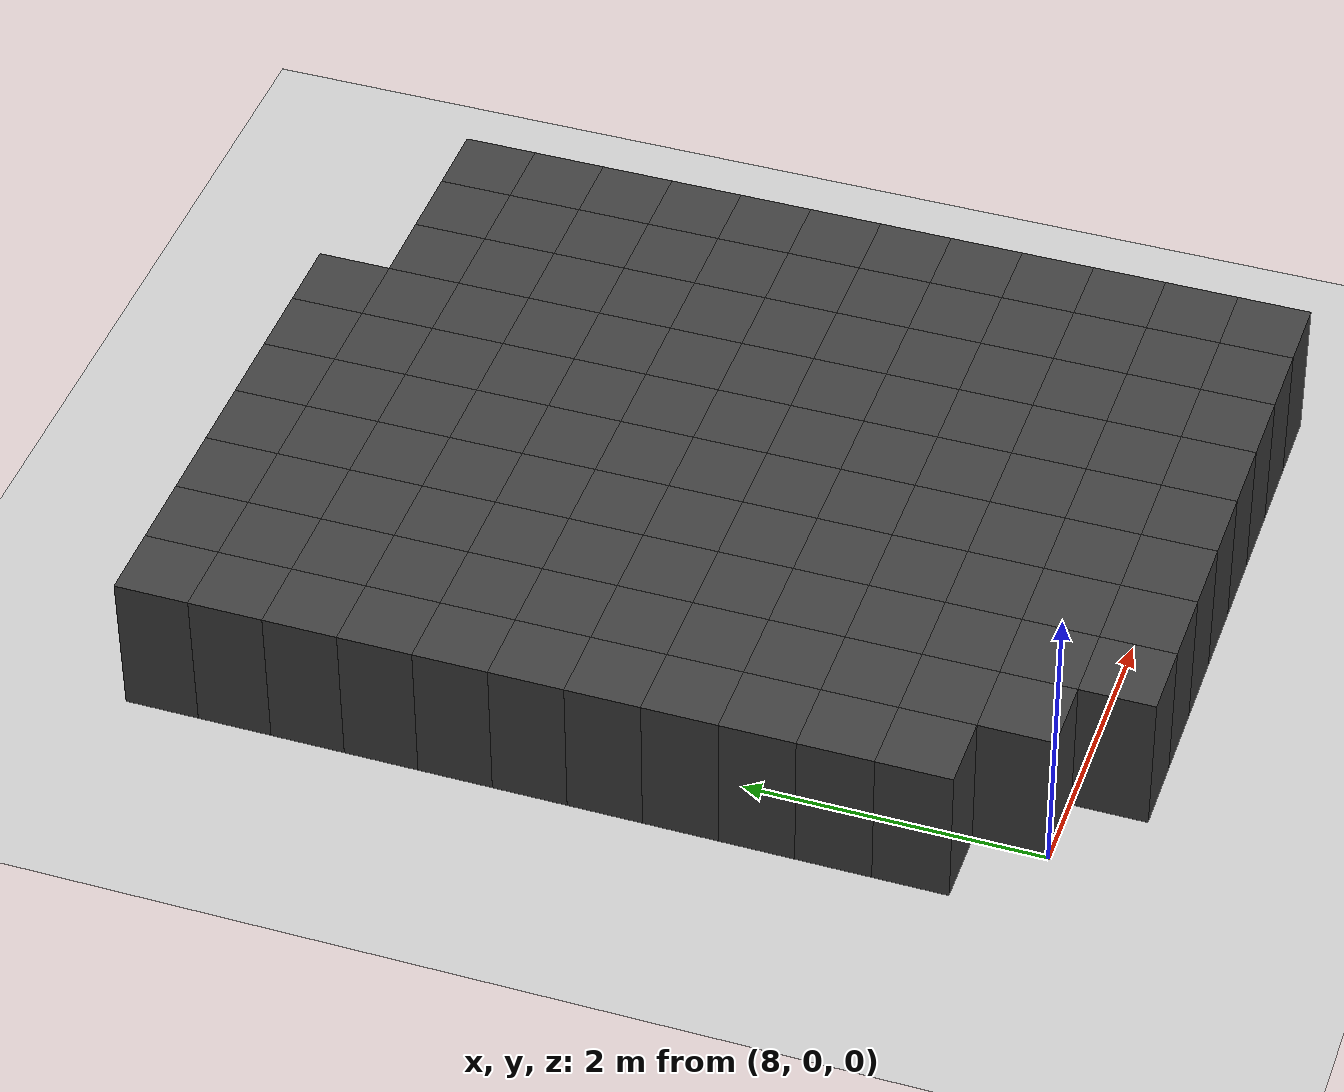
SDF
<sdf version="1.7">
 <world name="map_14668">
  <model name="ground_plane">
   <static>true</static>
   <link name="link">
    <collision name="collision">
     <geometry><plane><normal>0 0 1</normal><size>200 200</size></plane></geometry>
    </collision>
    <visual name="visual">
     <geometry><plane><normal>0 0 1</normal><size>200 200</size></plane></geometry>
     <material><ambient>0.8 0.8 0.8 1</ambient><diffuse>0.8 0.8 0.8 1</diffuse></material>
    </visual>
   </link>
  </model>
  <model name="maze_environment">
   <static>true</static>
   <link name="wall_494">
    <pose>7.750 5.750 0.500 0 0 0</pose>
    <collision name="col"><geometry><box><size>0.5 0.5 1.0</size></box></geometry></collision>
    <visual name="vis">
     <geometry><box><size>0.5 0.5 1.0</size></box></geometry>
     <material><ambient>0.15 0.15 0.15 1</ambient><diffuse>0.25 0.25 0.25 1</diffuse></material>
    </visual>
   </link>
   <link name="wall_495">
    <pose>8.250 5.750 0.500 0 0 0</pose>
    <collision name="col"><geometry><box><size>0.5 0.5 1.0</size></box></geometry></collision>
    <visual name="vis">
     <geometry><box><size>0.5 0.5 1.0</size></box></geometry>
     <material><ambient>0.15 0.15 0.15 1</ambient><diffuse>0.25 0.25 0.25 1</diffuse></material>
    </visual>
   </link>
   <link name="wall_496">
    <pose>8.750 5.750 0.500 0 0 0</pose>
    <collision name="col"><geometry><box><size>0.5 0.5 1.0</size></box></geometry></collision>
    <visual name="vis">
     <geometry><box><size>0.5 0.5 1.0</size></box></geometry>
     <material><ambient>0.15 0.15 0.15 1</ambient><diffuse>0.25 0.25 0.25 1</diffuse></material>
    </visual>
   </link>
   <link name="wall_497">
    <pose>9.250 5.750 0.500 0 0 0</pose>
    <collision name="col"><geometry><box><size>0.5 0.5 1.0</size></box></geometry></collision>
    <visual name="vis">
     <geometry><box><size>0.5 0.5 1.0</size></box></geometry>
     <material><ambient>0.15 0.15 0.15 1</ambient><diffuse>0.25 0.25 0.25 1</diffuse></material>
    </visual>
   </link>
   <link name="wall_498">
    <pose>9.750 5.750 0.500 0 0 0</pose>
    <collision name="col"><geometry><box><size>0.5 0.5 1.0</size></box></geometry></collision>
    <visual name="vis">
     <geometry><box><size>0.5 0.5 1.0</size></box></geometry>
     <material><ambient>0.15 0.15 0.15 1</ambient><diffuse>0.25 0.25 0.25 1</diffuse></material>
    </visual>
   </link>
   <link name="wall_499">
    <pose>10.250 5.750 0.500 0 0 0</pose>
    <collision name="col"><geometry><box><size>0.5 0.5 1.0</size></box></geometry></collision>
    <visual name="vis">
     <geometry><box><size>0.5 0.5 1.0</size></box></geometry>
     <material><ambient>0.15 0.15 0.15 1</ambient><diffuse>0.25 0.25 0.25 1</diffuse></material>
    </visual>
   </link>
   <link name="wall_500">
    <pose>10.750 5.750 0.500 0 0 0</pose>
    <collision name="col"><geometry><box><size>0.5 0.5 1.0</size></box></geometry></collision>
    <visual name="vis">
     <geometry><box><size>0.5 0.5 1.0</size></box></geometry>
     <material><ambient>0.15 0.15 0.15 1</ambient><diffuse>0.25 0.25 0.25 1</diffuse></material>
    </visual>
   </link>
   <link name="wall_524">
    <pose>7.750 5.250 0.500 0 0 0</pose>
    <collision name="col"><geometry><box><size>0.5 0.5 1.0</size></box></geometry></collision>
    <visual name="vis">
     <geometry><box><size>0.5 0.5 1.0</size></box></geometry>
     <material><ambient>0.15 0.15 0.15 1</ambient><diffuse>0.25 0.25 0.25 1</diffuse></material>
    </visual>
   </link>
   <link name="wall_525">
    <pose>8.250 5.250 0.500 0 0 0</pose>
    <collision name="col"><geometry><box><size>0.5 0.5 1.0</size></box></geometry></collision>
    <visual name="vis">
     <geometry><box><size>0.5 0.5 1.0</size></box></geometry>
     <material><ambient>0.15 0.15 0.15 1</ambient><diffuse>0.25 0.25 0.25 1</diffuse></material>
    </visual>
   </link>
   <link name="wall_526">
    <pose>8.750 5.250 0.500 0 0 0</pose>
    <collision name="col"><geometry><box><size>0.5 0.5 1.0</size></box></geometry></collision>
    <visual name="vis">
     <geometry><box><size>0.5 0.5 1.0</size></box></geometry>
     <material><ambient>0.15 0.15 0.15 1</ambient><diffuse>0.25 0.25 0.25 1</diffuse></material>
    </visual>
   </link>
   <link name="wall_527">
    <pose>9.250 5.250 0.500 0 0 0</pose>
    <collision name="col"><geometry><box><size>0.5 0.5 1.0</size></box></geometry></collision>
    <visual name="vis">
     <geometry><box><size>0.5 0.5 1.0</size></box></geometry>
     <material><ambient>0.15 0.15 0.15 1</ambient><diffuse>0.25 0.25 0.25 1</diffuse></material>
    </visual>
   </link>
   <link name="wall_528">
    <pose>9.750 5.250 0.500 0 0 0</pose>
    <collision name="col"><geometry><box><size>0.5 0.5 1.0</size></box></geometry></collision>
    <visual name="vis">
     <geometry><box><size>0.5 0.5 1.0</size></box></geometry>
     <material><ambient>0.15 0.15 0.15 1</ambient><diffuse>0.25 0.25 0.25 1</diffuse></material>
    </visual>
   </link>
   <link name="wall_529">
    <pose>10.250 5.250 0.500 0 0 0</pose>
    <collision name="col"><geometry><box><size>0.5 0.5 1.0</size></box></geometry></collision>
    <visual name="vis">
     <geometry><box><size>0.5 0.5 1.0</size></box></geometry>
     <material><ambient>0.15 0.15 0.15 1</ambient><diffuse>0.25 0.25 0.25 1</diffuse></material>
    </visual>
   </link>
   <link name="wall_530">
    <pose>10.750 5.250 0.500 0 0 0</pose>
    <collision name="col"><geometry><box><size>0.5 0.5 1.0</size></box></geometry></collision>
    <visual name="vis">
     <geometry><box><size>0.5 0.5 1.0</size></box></geometry>
     <material><ambient>0.15 0.15 0.15 1</ambient><diffuse>0.25 0.25 0.25 1</diffuse></material>
    </visual>
   </link>
   <link name="wall_531">
    <pose>11.250 5.250 0.500 0 0 0</pose>
    <collision name="col"><geometry><box><size>0.5 0.5 1.0</size></box></geometry></collision>
    <visual name="vis">
     <geometry><box><size>0.5 0.5 1.0</size></box></geometry>
     <material><ambient>0.15 0.15 0.15 1</ambient><diffuse>0.25 0.25 0.25 1</diffuse></material>
    </visual>
   </link>
   <link name="wall_532">
    <pose>11.750 5.250 0.500 0 0 0</pose>
    <collision name="col"><geometry><box><size>0.5 0.5 1.0</size></box></geometry></collision>
    <visual name="vis">
     <geometry><box><size>0.5 0.5 1.0</size></box></geometry>
     <material><ambient>0.15 0.15 0.15 1</ambient><diffuse>0.25 0.25 0.25 1</diffuse></material>
    </visual>
   </link>
   <link name="wall_533">
    <pose>12.250 5.250 0.500 0 0 0</pose>
    <collision name="col"><geometry><box><size>0.5 0.5 1.0</size></box></geometry></collision>
    <visual name="vis">
     <geometry><box><size>0.5 0.5 1.0</size></box></geometry>
     <material><ambient>0.15 0.15 0.15 1</ambient><diffuse>0.25 0.25 0.25 1</diffuse></material>
    </visual>
   </link>
   <link name="wall_560">
    <pose>7.750 4.750 0.500 0 0 0</pose>
    <collision name="col"><geometry><box><size>0.5 0.5 1.0</size></box></geometry></collision>
    <visual name="vis">
     <geometry><box><size>0.5 0.5 1.0</size></box></geometry>
     <material><ambient>0.15 0.15 0.15 1</ambient><diffuse>0.25 0.25 0.25 1</diffuse></material>
    </visual>
   </link>
   <link name="wall_561">
    <pose>8.250 4.750 0.500 0 0 0</pose>
    <collision name="col"><geometry><box><size>0.5 0.5 1.0</size></box></geometry></collision>
    <visual name="vis">
     <geometry><box><size>0.5 0.5 1.0</size></box></geometry>
     <material><ambient>0.15 0.15 0.15 1</ambient><diffuse>0.25 0.25 0.25 1</diffuse></material>
    </visual>
   </link>
   <link name="wall_562">
    <pose>8.750 4.750 0.500 0 0 0</pose>
    <collision name="col"><geometry><box><size>0.5 0.5 1.0</size></box></geometry></collision>
    <visual name="vis">
     <geometry><box><size>0.5 0.5 1.0</size></box></geometry>
     <material><ambient>0.15 0.15 0.15 1</ambient><diffuse>0.25 0.25 0.25 1</diffuse></material>
    </visual>
   </link>
   <link name="wall_563">
    <pose>9.250 4.750 0.500 0 0 0</pose>
    <collision name="col"><geometry><box><size>0.5 0.5 1.0</size></box></geometry></collision>
    <visual name="vis">
     <geometry><box><size>0.5 0.5 1.0</size></box></geometry>
     <material><ambient>0.15 0.15 0.15 1</ambient><diffuse>0.25 0.25 0.25 1</diffuse></material>
    </visual>
   </link>
   <link name="wall_564">
    <pose>9.750 4.750 0.500 0 0 0</pose>
    <collision name="col"><geometry><box><size>0.5 0.5 1.0</size></box></geometry></collision>
    <visual name="vis">
     <geometry><box><size>0.5 0.5 1.0</size></box></geometry>
     <material><ambient>0.15 0.15 0.15 1</ambient><diffuse>0.25 0.25 0.25 1</diffuse></material>
    </visual>
   </link>
   <link name="wall_565">
    <pose>10.250 4.750 0.500 0 0 0</pose>
    <collision name="col"><geometry><box><size>0.5 0.5 1.0</size></box></geometry></collision>
    <visual name="vis">
     <geometry><box><size>0.5 0.5 1.0</size></box></geometry>
     <material><ambient>0.15 0.15 0.15 1</ambient><diffuse>0.25 0.25 0.25 1</diffuse></material>
    </visual>
   </link>
   <link name="wall_566">
    <pose>10.750 4.750 0.500 0 0 0</pose>
    <collision name="col"><geometry><box><size>0.5 0.5 1.0</size></box></geometry></collision>
    <visual name="vis">
     <geometry><box><size>0.5 0.5 1.0</size></box></geometry>
     <material><ambient>0.15 0.15 0.15 1</ambient><diffuse>0.25 0.25 0.25 1</diffuse></material>
    </visual>
   </link>
   <link name="wall_567">
    <pose>11.250 4.750 0.500 0 0 0</pose>
    <collision name="col"><geometry><box><size>0.5 0.5 1.0</size></box></geometry></collision>
    <visual name="vis">
     <geometry><box><size>0.5 0.5 1.0</size></box></geometry>
     <material><ambient>0.15 0.15 0.15 1</ambient><diffuse>0.25 0.25 0.25 1</diffuse></material>
    </visual>
   </link>
   <link name="wall_568">
    <pose>11.750 4.750 0.500 0 0 0</pose>
    <collision name="col"><geometry><box><size>0.5 0.5 1.0</size></box></geometry></collision>
    <visual name="vis">
     <geometry><box><size>0.5 0.5 1.0</size></box></geometry>
     <material><ambient>0.15 0.15 0.15 1</ambient><diffuse>0.25 0.25 0.25 1</diffuse></material>
    </visual>
   </link>
   <link name="wall_569">
    <pose>12.250 4.750 0.500 0 0 0</pose>
    <collision name="col"><geometry><box><size>0.5 0.5 1.0</size></box></geometry></collision>
    <visual name="vis">
     <geometry><box><size>0.5 0.5 1.0</size></box></geometry>
     <material><ambient>0.15 0.15 0.15 1</ambient><diffuse>0.25 0.25 0.25 1</diffuse></material>
    </visual>
   </link>
   <link name="wall_594">
    <pose>7.750 4.250 0.500 0 0 0</pose>
    <collision name="col"><geometry><box><size>0.5 0.5 1.0</size></box></geometry></collision>
    <visual name="vis">
     <geometry><box><size>0.5 0.5 1.0</size></box></geometry>
     <material><ambient>0.15 0.15 0.15 1</ambient><diffuse>0.25 0.25 0.25 1</diffuse></material>
    </visual>
   </link>
   <link name="wall_595">
    <pose>8.250 4.250 0.500 0 0 0</pose>
    <collision name="col"><geometry><box><size>0.5 0.5 1.0</size></box></geometry></collision>
    <visual name="vis">
     <geometry><box><size>0.5 0.5 1.0</size></box></geometry>
     <material><ambient>0.15 0.15 0.15 1</ambient><diffuse>0.25 0.25 0.25 1</diffuse></material>
    </visual>
   </link>
   <link name="wall_596">
    <pose>8.750 4.250 0.500 0 0 0</pose>
    <collision name="col"><geometry><box><size>0.5 0.5 1.0</size></box></geometry></collision>
    <visual name="vis">
     <geometry><box><size>0.5 0.5 1.0</size></box></geometry>
     <material><ambient>0.15 0.15 0.15 1</ambient><diffuse>0.25 0.25 0.25 1</diffuse></material>
    </visual>
   </link>
   <link name="wall_597">
    <pose>9.250 4.250 0.500 0 0 0</pose>
    <collision name="col"><geometry><box><size>0.5 0.5 1.0</size></box></geometry></collision>
    <visual name="vis">
     <geometry><box><size>0.5 0.5 1.0</size></box></geometry>
     <material><ambient>0.15 0.15 0.15 1</ambient><diffuse>0.25 0.25 0.25 1</diffuse></material>
    </visual>
   </link>
   <link name="wall_598">
    <pose>9.750 4.250 0.500 0 0 0</pose>
    <collision name="col"><geometry><box><size>0.5 0.5 1.0</size></box></geometry></collision>
    <visual name="vis">
     <geometry><box><size>0.5 0.5 1.0</size></box></geometry>
     <material><ambient>0.15 0.15 0.15 1</ambient><diffuse>0.25 0.25 0.25 1</diffuse></material>
    </visual>
   </link>
   <link name="wall_599">
    <pose>10.250 4.250 0.500 0 0 0</pose>
    <collision name="col"><geometry><box><size>0.5 0.5 1.0</size></box></geometry></collision>
    <visual name="vis">
     <geometry><box><size>0.5 0.5 1.0</size></box></geometry>
     <material><ambient>0.15 0.15 0.15 1</ambient><diffuse>0.25 0.25 0.25 1</diffuse></material>
    </visual>
   </link>
   <link name="wall_600">
    <pose>10.750 4.250 0.500 0 0 0</pose>
    <collision name="col"><geometry><box><size>0.5 0.5 1.0</size></box></geometry></collision>
    <visual name="vis">
     <geometry><box><size>0.5 0.5 1.0</size></box></geometry>
     <material><ambient>0.15 0.15 0.15 1</ambient><diffuse>0.25 0.25 0.25 1</diffuse></material>
    </visual>
   </link>
   <link name="wall_601">
    <pose>11.250 4.250 0.500 0 0 0</pose>
    <collision name="col"><geometry><box><size>0.5 0.5 1.0</size></box></geometry></collision>
    <visual name="vis">
     <geometry><box><size>0.5 0.5 1.0</size></box></geometry>
     <material><ambient>0.15 0.15 0.15 1</ambient><diffuse>0.25 0.25 0.25 1</diffuse></material>
    </visual>
   </link>
   <link name="wall_602">
    <pose>11.750 4.250 0.500 0 0 0</pose>
    <collision name="col"><geometry><box><size>0.5 0.5 1.0</size></box></geometry></collision>
    <visual name="vis">
     <geometry><box><size>0.5 0.5 1.0</size></box></geometry>
     <material><ambient>0.15 0.15 0.15 1</ambient><diffuse>0.25 0.25 0.25 1</diffuse></material>
    </visual>
   </link>
   <link name="wall_603">
    <pose>12.250 4.250 0.500 0 0 0</pose>
    <collision name="col"><geometry><box><size>0.5 0.5 1.0</size></box></geometry></collision>
    <visual name="vis">
     <geometry><box><size>0.5 0.5 1.0</size></box></geometry>
     <material><ambient>0.15 0.15 0.15 1</ambient><diffuse>0.25 0.25 0.25 1</diffuse></material>
    </visual>
   </link>
   <link name="wall_636">
    <pose>7.750 3.750 0.500 0 0 0</pose>
    <collision name="col"><geometry><box><size>0.5 0.5 1.0</size></box></geometry></collision>
    <visual name="vis">
     <geometry><box><size>0.5 0.5 1.0</size></box></geometry>
     <material><ambient>0.15 0.15 0.15 1</ambient><diffuse>0.25 0.25 0.25 1</diffuse></material>
    </visual>
   </link>
   <link name="wall_637">
    <pose>8.250 3.750 0.500 0 0 0</pose>
    <collision name="col"><geometry><box><size>0.5 0.5 1.0</size></box></geometry></collision>
    <visual name="vis">
     <geometry><box><size>0.5 0.5 1.0</size></box></geometry>
     <material><ambient>0.15 0.15 0.15 1</ambient><diffuse>0.25 0.25 0.25 1</diffuse></material>
    </visual>
   </link>
   <link name="wall_638">
    <pose>8.750 3.750 0.500 0 0 0</pose>
    <collision name="col"><geometry><box><size>0.5 0.5 1.0</size></box></geometry></collision>
    <visual name="vis">
     <geometry><box><size>0.5 0.5 1.0</size></box></geometry>
     <material><ambient>0.15 0.15 0.15 1</ambient><diffuse>0.25 0.25 0.25 1</diffuse></material>
    </visual>
   </link>
   <link name="wall_639">
    <pose>9.250 3.750 0.500 0 0 0</pose>
    <collision name="col"><geometry><box><size>0.5 0.5 1.0</size></box></geometry></collision>
    <visual name="vis">
     <geometry><box><size>0.5 0.5 1.0</size></box></geometry>
     <material><ambient>0.15 0.15 0.15 1</ambient><diffuse>0.25 0.25 0.25 1</diffuse></material>
    </visual>
   </link>
   <link name="wall_640">
    <pose>9.750 3.750 0.500 0 0 0</pose>
    <collision name="col"><geometry><box><size>0.5 0.5 1.0</size></box></geometry></collision>
    <visual name="vis">
     <geometry><box><size>0.5 0.5 1.0</size></box></geometry>
     <material><ambient>0.15 0.15 0.15 1</ambient><diffuse>0.25 0.25 0.25 1</diffuse></material>
    </visual>
   </link>
   <link name="wall_641">
    <pose>10.250 3.750 0.500 0 0 0</pose>
    <collision name="col"><geometry><box><size>0.5 0.5 1.0</size></box></geometry></collision>
    <visual name="vis">
     <geometry><box><size>0.5 0.5 1.0</size></box></geometry>
     <material><ambient>0.15 0.15 0.15 1</ambient><diffuse>0.25 0.25 0.25 1</diffuse></material>
    </visual>
   </link>
   <link name="wall_642">
    <pose>10.750 3.750 0.500 0 0 0</pose>
    <collision name="col"><geometry><box><size>0.5 0.5 1.0</size></box></geometry></collision>
    <visual name="vis">
     <geometry><box><size>0.5 0.5 1.0</size></box></geometry>
     <material><ambient>0.15 0.15 0.15 1</ambient><diffuse>0.25 0.25 0.25 1</diffuse></material>
    </visual>
   </link>
   <link name="wall_643">
    <pose>11.250 3.750 0.500 0 0 0</pose>
    <collision name="col"><geometry><box><size>0.5 0.5 1.0</size></box></geometry></collision>
    <visual name="vis">
     <geometry><box><size>0.5 0.5 1.0</size></box></geometry>
     <material><ambient>0.15 0.15 0.15 1</ambient><diffuse>0.25 0.25 0.25 1</diffuse></material>
    </visual>
   </link>
   <link name="wall_644">
    <pose>11.750 3.750 0.500 0 0 0</pose>
    <collision name="col"><geometry><box><size>0.5 0.5 1.0</size></box></geometry></collision>
    <visual name="vis">
     <geometry><box><size>0.5 0.5 1.0</size></box></geometry>
     <material><ambient>0.15 0.15 0.15 1</ambient><diffuse>0.25 0.25 0.25 1</diffuse></material>
    </visual>
   </link>
   <link name="wall_645">
    <pose>12.250 3.750 0.500 0 0 0</pose>
    <collision name="col"><geometry><box><size>0.5 0.5 1.0</size></box></geometry></collision>
    <visual name="vis">
     <geometry><box><size>0.5 0.5 1.0</size></box></geometry>
     <material><ambient>0.15 0.15 0.15 1</ambient><diffuse>0.25 0.25 0.25 1</diffuse></material>
    </visual>
   </link>
   <link name="wall_678">
    <pose>7.750 3.250 0.500 0 0 0</pose>
    <collision name="col"><geometry><box><size>0.5 0.5 1.0</size></box></geometry></collision>
    <visual name="vis">
     <geometry><box><size>0.5 0.5 1.0</size></box></geometry>
     <material><ambient>0.15 0.15 0.15 1</ambient><diffuse>0.25 0.25 0.25 1</diffuse></material>
    </visual>
   </link>
   <link name="wall_679">
    <pose>8.250 3.250 0.500 0 0 0</pose>
    <collision name="col"><geometry><box><size>0.5 0.5 1.0</size></box></geometry></collision>
    <visual name="vis">
     <geometry><box><size>0.5 0.5 1.0</size></box></geometry>
     <material><ambient>0.15 0.15 0.15 1</ambient><diffuse>0.25 0.25 0.25 1</diffuse></material>
    </visual>
   </link>
   <link name="wall_680">
    <pose>8.750 3.250 0.500 0 0 0</pose>
    <collision name="col"><geometry><box><size>0.5 0.5 1.0</size></box></geometry></collision>
    <visual name="vis">
     <geometry><box><size>0.5 0.5 1.0</size></box></geometry>
     <material><ambient>0.15 0.15 0.15 1</ambient><diffuse>0.25 0.25 0.25 1</diffuse></material>
    </visual>
   </link>
   <link name="wall_681">
    <pose>9.250 3.250 0.500 0 0 0</pose>
    <collision name="col"><geometry><box><size>0.5 0.5 1.0</size></box></geometry></collision>
    <visual name="vis">
     <geometry><box><size>0.5 0.5 1.0</size></box></geometry>
     <material><ambient>0.15 0.15 0.15 1</ambient><diffuse>0.25 0.25 0.25 1</diffuse></material>
    </visual>
   </link>
   <link name="wall_682">
    <pose>9.750 3.250 0.500 0 0 0</pose>
    <collision name="col"><geometry><box><size>0.5 0.5 1.0</size></box></geometry></collision>
    <visual name="vis">
     <geometry><box><size>0.5 0.5 1.0</size></box></geometry>
     <material><ambient>0.15 0.15 0.15 1</ambient><diffuse>0.25 0.25 0.25 1</diffuse></material>
    </visual>
   </link>
   <link name="wall_683">
    <pose>10.250 3.250 0.500 0 0 0</pose>
    <collision name="col"><geometry><box><size>0.5 0.5 1.0</size></box></geometry></collision>
    <visual name="vis">
     <geometry><box><size>0.5 0.5 1.0</size></box></geometry>
     <material><ambient>0.15 0.15 0.15 1</ambient><diffuse>0.25 0.25 0.25 1</diffuse></material>
    </visual>
   </link>
   <link name="wall_684">
    <pose>10.750 3.250 0.500 0 0 0</pose>
    <collision name="col"><geometry><box><size>0.5 0.5 1.0</size></box></geometry></collision>
    <visual name="vis">
     <geometry><box><size>0.5 0.5 1.0</size></box></geometry>
     <material><ambient>0.15 0.15 0.15 1</ambient><diffuse>0.25 0.25 0.25 1</diffuse></material>
    </visual>
   </link>
   <link name="wall_685">
    <pose>11.250 3.250 0.500 0 0 0</pose>
    <collision name="col"><geometry><box><size>0.5 0.5 1.0</size></box></geometry></collision>
    <visual name="vis">
     <geometry><box><size>0.5 0.5 1.0</size></box></geometry>
     <material><ambient>0.15 0.15 0.15 1</ambient><diffuse>0.25 0.25 0.25 1</diffuse></material>
    </visual>
   </link>
   <link name="wall_686">
    <pose>11.750 3.250 0.500 0 0 0</pose>
    <collision name="col"><geometry><box><size>0.5 0.5 1.0</size></box></geometry></collision>
    <visual name="vis">
     <geometry><box><size>0.5 0.5 1.0</size></box></geometry>
     <material><ambient>0.15 0.15 0.15 1</ambient><diffuse>0.25 0.25 0.25 1</diffuse></material>
    </visual>
   </link>
   <link name="wall_687">
    <pose>12.250 3.250 0.500 0 0 0</pose>
    <collision name="col"><geometry><box><size>0.5 0.5 1.0</size></box></geometry></collision>
    <visual name="vis">
     <geometry><box><size>0.5 0.5 1.0</size></box></geometry>
     <material><ambient>0.15 0.15 0.15 1</ambient><diffuse>0.25 0.25 0.25 1</diffuse></material>
    </visual>
   </link>
   <link name="wall_714">
    <pose>7.750 2.750 0.500 0 0 0</pose>
    <collision name="col"><geometry><box><size>0.5 0.5 1.0</size></box></geometry></collision>
    <visual name="vis">
     <geometry><box><size>0.5 0.5 1.0</size></box></geometry>
     <material><ambient>0.15 0.15 0.15 1</ambient><diffuse>0.25 0.25 0.25 1</diffuse></material>
    </visual>
   </link>
   <link name="wall_715">
    <pose>8.250 2.750 0.500 0 0 0</pose>
    <collision name="col"><geometry><box><size>0.5 0.5 1.0</size></box></geometry></collision>
    <visual name="vis">
     <geometry><box><size>0.5 0.5 1.0</size></box></geometry>
     <material><ambient>0.15 0.15 0.15 1</ambient><diffuse>0.25 0.25 0.25 1</diffuse></material>
    </visual>
   </link>
   <link name="wall_716">
    <pose>8.750 2.750 0.500 0 0 0</pose>
    <collision name="col"><geometry><box><size>0.5 0.5 1.0</size></box></geometry></collision>
    <visual name="vis">
     <geometry><box><size>0.5 0.5 1.0</size></box></geometry>
     <material><ambient>0.15 0.15 0.15 1</ambient><diffuse>0.25 0.25 0.25 1</diffuse></material>
    </visual>
   </link>
   <link name="wall_717">
    <pose>9.250 2.750 0.500 0 0 0</pose>
    <collision name="col"><geometry><box><size>0.5 0.5 1.0</size></box></geometry></collision>
    <visual name="vis">
     <geometry><box><size>0.5 0.5 1.0</size></box></geometry>
     <material><ambient>0.15 0.15 0.15 1</ambient><diffuse>0.25 0.25 0.25 1</diffuse></material>
    </visual>
   </link>
   <link name="wall_718">
    <pose>9.750 2.750 0.500 0 0 0</pose>
    <collision name="col"><geometry><box><size>0.5 0.5 1.0</size></box></geometry></collision>
    <visual name="vis">
     <geometry><box><size>0.5 0.5 1.0</size></box></geometry>
     <material><ambient>0.15 0.15 0.15 1</ambient><diffuse>0.25 0.25 0.25 1</diffuse></material>
    </visual>
   </link>
   <link name="wall_719">
    <pose>10.250 2.750 0.500 0 0 0</pose>
    <collision name="col"><geometry><box><size>0.5 0.5 1.0</size></box></geometry></collision>
    <visual name="vis">
     <geometry><box><size>0.5 0.5 1.0</size></box></geometry>
     <material><ambient>0.15 0.15 0.15 1</ambient><diffuse>0.25 0.25 0.25 1</diffuse></material>
    </visual>
   </link>
   <link name="wall_720">
    <pose>10.750 2.750 0.500 0 0 0</pose>
    <collision name="col"><geometry><box><size>0.5 0.5 1.0</size></box></geometry></collision>
    <visual name="vis">
     <geometry><box><size>0.5 0.5 1.0</size></box></geometry>
     <material><ambient>0.15 0.15 0.15 1</ambient><diffuse>0.25 0.25 0.25 1</diffuse></material>
    </visual>
   </link>
   <link name="wall_721">
    <pose>11.250 2.750 0.500 0 0 0</pose>
    <collision name="col"><geometry><box><size>0.5 0.5 1.0</size></box></geometry></collision>
    <visual name="vis">
     <geometry><box><size>0.5 0.5 1.0</size></box></geometry>
     <material><ambient>0.15 0.15 0.15 1</ambient><diffuse>0.25 0.25 0.25 1</diffuse></material>
    </visual>
   </link>
   <link name="wall_722">
    <pose>11.750 2.750 0.500 0 0 0</pose>
    <collision name="col"><geometry><box><size>0.5 0.5 1.0</size></box></geometry></collision>
    <visual name="vis">
     <geometry><box><size>0.5 0.5 1.0</size></box></geometry>
     <material><ambient>0.15 0.15 0.15 1</ambient><diffuse>0.25 0.25 0.25 1</diffuse></material>
    </visual>
   </link>
   <link name="wall_723">
    <pose>12.250 2.750 0.500 0 0 0</pose>
    <collision name="col"><geometry><box><size>0.5 0.5 1.0</size></box></geometry></collision>
    <visual name="vis">
     <geometry><box><size>0.5 0.5 1.0</size></box></geometry>
     <material><ambient>0.15 0.15 0.15 1</ambient><diffuse>0.25 0.25 0.25 1</diffuse></material>
    </visual>
   </link>
   <link name="wall_757">
    <pose>7.750 2.250 0.500 0 0 0</pose>
    <collision name="col"><geometry><box><size>0.5 0.5 1.0</size></box></geometry></collision>
    <visual name="vis">
     <geometry><box><size>0.5 0.5 1.0</size></box></geometry>
     <material><ambient>0.15 0.15 0.15 1</ambient><diffuse>0.25 0.25 0.25 1</diffuse></material>
    </visual>
   </link>
   <link name="wall_758">
    <pose>8.250 2.250 0.500 0 0 0</pose>
    <collision name="col"><geometry><box><size>0.5 0.5 1.0</size></box></geometry></collision>
    <visual name="vis">
     <geometry><box><size>0.5 0.5 1.0</size></box></geometry>
     <material><ambient>0.15 0.15 0.15 1</ambient><diffuse>0.25 0.25 0.25 1</diffuse></material>
    </visual>
   </link>
   <link name="wall_759">
    <pose>8.750 2.250 0.500 0 0 0</pose>
    <collision name="col"><geometry><box><size>0.5 0.5 1.0</size></box></geometry></collision>
    <visual name="vis">
     <geometry><box><size>0.5 0.5 1.0</size></box></geometry>
     <material><ambient>0.15 0.15 0.15 1</ambient><diffuse>0.25 0.25 0.25 1</diffuse></material>
    </visual>
   </link>
   <link name="wall_760">
    <pose>9.250 2.250 0.500 0 0 0</pose>
    <collision name="col"><geometry><box><size>0.5 0.5 1.0</size></box></geometry></collision>
    <visual name="vis">
     <geometry><box><size>0.5 0.5 1.0</size></box></geometry>
     <material><ambient>0.15 0.15 0.15 1</ambient><diffuse>0.25 0.25 0.25 1</diffuse></material>
    </visual>
   </link>
   <link name="wall_761">
    <pose>9.750 2.250 0.500 0 0 0</pose>
    <collision name="col"><geometry><box><size>0.5 0.5 1.0</size></box></geometry></collision>
    <visual name="vis">
     <geometry><box><size>0.5 0.5 1.0</size></box></geometry>
     <material><ambient>0.15 0.15 0.15 1</ambient><diffuse>0.25 0.25 0.25 1</diffuse></material>
    </visual>
   </link>
   <link name="wall_762">
    <pose>10.250 2.250 0.500 0 0 0</pose>
    <collision name="col"><geometry><box><size>0.5 0.5 1.0</size></box></geometry></collision>
    <visual name="vis">
     <geometry><box><size>0.5 0.5 1.0</size></box></geometry>
     <material><ambient>0.15 0.15 0.15 1</ambient><diffuse>0.25 0.25 0.25 1</diffuse></material>
    </visual>
   </link>
   <link name="wall_763">
    <pose>10.750 2.250 0.500 0 0 0</pose>
    <collision name="col"><geometry><box><size>0.5 0.5 1.0</size></box></geometry></collision>
    <visual name="vis">
     <geometry><box><size>0.5 0.5 1.0</size></box></geometry>
     <material><ambient>0.15 0.15 0.15 1</ambient><diffuse>0.25 0.25 0.25 1</diffuse></material>
    </visual>
   </link>
   <link name="wall_764">
    <pose>11.250 2.250 0.500 0 0 0</pose>
    <collision name="col"><geometry><box><size>0.5 0.5 1.0</size></box></geometry></collision>
    <visual name="vis">
     <geometry><box><size>0.5 0.5 1.0</size></box></geometry>
     <material><ambient>0.15 0.15 0.15 1</ambient><diffuse>0.25 0.25 0.25 1</diffuse></material>
    </visual>
   </link>
   <link name="wall_765">
    <pose>11.750 2.250 0.500 0 0 0</pose>
    <collision name="col"><geometry><box><size>0.5 0.5 1.0</size></box></geometry></collision>
    <visual name="vis">
     <geometry><box><size>0.5 0.5 1.0</size></box></geometry>
     <material><ambient>0.15 0.15 0.15 1</ambient><diffuse>0.25 0.25 0.25 1</diffuse></material>
    </visual>
   </link>
   <link name="wall_766">
    <pose>12.250 2.250 0.500 0 0 0</pose>
    <collision name="col"><geometry><box><size>0.5 0.5 1.0</size></box></geometry></collision>
    <visual name="vis">
     <geometry><box><size>0.5 0.5 1.0</size></box></geometry>
     <material><ambient>0.15 0.15 0.15 1</ambient><diffuse>0.25 0.25 0.25 1</diffuse></material>
    </visual>
   </link>
   <link name="wall_800">
    <pose>7.750 1.750 0.500 0 0 0</pose>
    <collision name="col"><geometry><box><size>0.5 0.5 1.0</size></box></geometry></collision>
    <visual name="vis">
     <geometry><box><size>0.5 0.5 1.0</size></box></geometry>
     <material><ambient>0.15 0.15 0.15 1</ambient><diffuse>0.25 0.25 0.25 1</diffuse></material>
    </visual>
   </link>
   <link name="wall_801">
    <pose>8.250 1.750 0.500 0 0 0</pose>
    <collision name="col"><geometry><box><size>0.5 0.5 1.0</size></box></geometry></collision>
    <visual name="vis">
     <geometry><box><size>0.5 0.5 1.0</size></box></geometry>
     <material><ambient>0.15 0.15 0.15 1</ambient><diffuse>0.25 0.25 0.25 1</diffuse></material>
    </visual>
   </link>
   <link name="wall_802">
    <pose>8.750 1.750 0.500 0 0 0</pose>
    <collision name="col"><geometry><box><size>0.5 0.5 1.0</size></box></geometry></collision>
    <visual name="vis">
     <geometry><box><size>0.5 0.5 1.0</size></box></geometry>
     <material><ambient>0.15 0.15 0.15 1</ambient><diffuse>0.25 0.25 0.25 1</diffuse></material>
    </visual>
   </link>
   <link name="wall_803">
    <pose>9.250 1.750 0.500 0 0 0</pose>
    <collision name="col"><geometry><box><size>0.5 0.5 1.0</size></box></geometry></collision>
    <visual name="vis">
     <geometry><box><size>0.5 0.5 1.0</size></box></geometry>
     <material><ambient>0.15 0.15 0.15 1</ambient><diffuse>0.25 0.25 0.25 1</diffuse></material>
    </visual>
   </link>
   <link name="wall_804">
    <pose>9.750 1.750 0.500 0 0 0</pose>
    <collision name="col"><geometry><box><size>0.5 0.5 1.0</size></box></geometry></collision>
    <visual name="vis">
     <geometry><box><size>0.5 0.5 1.0</size></box></geometry>
     <material><ambient>0.15 0.15 0.15 1</ambient><diffuse>0.25 0.25 0.25 1</diffuse></material>
    </visual>
   </link>
   <link name="wall_805">
    <pose>10.250 1.750 0.500 0 0 0</pose>
    <collision name="col"><geometry><box><size>0.5 0.5 1.0</size></box></geometry></collision>
    <visual name="vis">
     <geometry><box><size>0.5 0.5 1.0</size></box></geometry>
     <material><ambient>0.15 0.15 0.15 1</ambient><diffuse>0.25 0.25 0.25 1</diffuse></material>
    </visual>
   </link>
   <link name="wall_806">
    <pose>10.750 1.750 0.500 0 0 0</pose>
    <collision name="col"><geometry><box><size>0.5 0.5 1.0</size></box></geometry></collision>
    <visual name="vis">
     <geometry><box><size>0.5 0.5 1.0</size></box></geometry>
     <material><ambient>0.15 0.15 0.15 1</ambient><diffuse>0.25 0.25 0.25 1</diffuse></material>
    </visual>
   </link>
   <link name="wall_807">
    <pose>11.250 1.750 0.500 0 0 0</pose>
    <collision name="col"><geometry><box><size>0.5 0.5 1.0</size></box></geometry></collision>
    <visual name="vis">
     <geometry><box><size>0.5 0.5 1.0</size></box></geometry>
     <material><ambient>0.15 0.15 0.15 1</ambient><diffuse>0.25 0.25 0.25 1</diffuse></material>
    </visual>
   </link>
   <link name="wall_808">
    <pose>11.750 1.750 0.500 0 0 0</pose>
    <collision name="col"><geometry><box><size>0.5 0.5 1.0</size></box></geometry></collision>
    <visual name="vis">
     <geometry><box><size>0.5 0.5 1.0</size></box></geometry>
     <material><ambient>0.15 0.15 0.15 1</ambient><diffuse>0.25 0.25 0.25 1</diffuse></material>
    </visual>
   </link>
   <link name="wall_809">
    <pose>12.250 1.750 0.500 0 0 0</pose>
    <collision name="col"><geometry><box><size>0.5 0.5 1.0</size></box></geometry></collision>
    <visual name="vis">
     <geometry><box><size>0.5 0.5 1.0</size></box></geometry>
     <material><ambient>0.15 0.15 0.15 1</ambient><diffuse>0.25 0.25 0.25 1</diffuse></material>
    </visual>
   </link>
   <link name="wall_843">
    <pose>7.750 1.250 0.500 0 0 0</pose>
    <collision name="col"><geometry><box><size>0.5 0.5 1.0</size></box></geometry></collision>
    <visual name="vis">
     <geometry><box><size>0.5 0.5 1.0</size></box></geometry>
     <material><ambient>0.15 0.15 0.15 1</ambient><diffuse>0.25 0.25 0.25 1</diffuse></material>
    </visual>
   </link>
   <link name="wall_844">
    <pose>8.250 1.250 0.500 0 0 0</pose>
    <collision name="col"><geometry><box><size>0.5 0.5 1.0</size></box></geometry></collision>
    <visual name="vis">
     <geometry><box><size>0.5 0.5 1.0</size></box></geometry>
     <material><ambient>0.15 0.15 0.15 1</ambient><diffuse>0.25 0.25 0.25 1</diffuse></material>
    </visual>
   </link>
   <link name="wall_845">
    <pose>8.750 1.250 0.500 0 0 0</pose>
    <collision name="col"><geometry><box><size>0.5 0.5 1.0</size></box></geometry></collision>
    <visual name="vis">
     <geometry><box><size>0.5 0.5 1.0</size></box></geometry>
     <material><ambient>0.15 0.15 0.15 1</ambient><diffuse>0.25 0.25 0.25 1</diffuse></material>
    </visual>
   </link>
   <link name="wall_846">
    <pose>9.250 1.250 0.500 0 0 0</pose>
    <collision name="col"><geometry><box><size>0.5 0.5 1.0</size></box></geometry></collision>
    <visual name="vis">
     <geometry><box><size>0.5 0.5 1.0</size></box></geometry>
     <material><ambient>0.15 0.15 0.15 1</ambient><diffuse>0.25 0.25 0.25 1</diffuse></material>
    </visual>
   </link>
   <link name="wall_847">
    <pose>9.750 1.250 0.500 0 0 0</pose>
    <collision name="col"><geometry><box><size>0.5 0.5 1.0</size></box></geometry></collision>
    <visual name="vis">
     <geometry><box><size>0.5 0.5 1.0</size></box></geometry>
     <material><ambient>0.15 0.15 0.15 1</ambient><diffuse>0.25 0.25 0.25 1</diffuse></material>
    </visual>
   </link>
   <link name="wall_848">
    <pose>10.250 1.250 0.500 0 0 0</pose>
    <collision name="col"><geometry><box><size>0.5 0.5 1.0</size></box></geometry></collision>
    <visual name="vis">
     <geometry><box><size>0.5 0.5 1.0</size></box></geometry>
     <material><ambient>0.15 0.15 0.15 1</ambient><diffuse>0.25 0.25 0.25 1</diffuse></material>
    </visual>
   </link>
   <link name="wall_849">
    <pose>10.750 1.250 0.500 0 0 0</pose>
    <collision name="col"><geometry><box><size>0.5 0.5 1.0</size></box></geometry></collision>
    <visual name="vis">
     <geometry><box><size>0.5 0.5 1.0</size></box></geometry>
     <material><ambient>0.15 0.15 0.15 1</ambient><diffuse>0.25 0.25 0.25 1</diffuse></material>
    </visual>
   </link>
   <link name="wall_850">
    <pose>11.250 1.250 0.500 0 0 0</pose>
    <collision name="col"><geometry><box><size>0.5 0.5 1.0</size></box></geometry></collision>
    <visual name="vis">
     <geometry><box><size>0.5 0.5 1.0</size></box></geometry>
     <material><ambient>0.15 0.15 0.15 1</ambient><diffuse>0.25 0.25 0.25 1</diffuse></material>
    </visual>
   </link>
   <link name="wall_851">
    <pose>11.750 1.250 0.500 0 0 0</pose>
    <collision name="col"><geometry><box><size>0.5 0.5 1.0</size></box></geometry></collision>
    <visual name="vis">
     <geometry><box><size>0.5 0.5 1.0</size></box></geometry>
     <material><ambient>0.15 0.15 0.15 1</ambient><diffuse>0.25 0.25 0.25 1</diffuse></material>
    </visual>
   </link>
   <link name="wall_852">
    <pose>12.250 1.250 0.500 0 0 0</pose>
    <collision name="col"><geometry><box><size>0.5 0.5 1.0</size></box></geometry></collision>
    <visual name="vis">
     <geometry><box><size>0.5 0.5 1.0</size></box></geometry>
     <material><ambient>0.15 0.15 0.15 1</ambient><diffuse>0.25 0.25 0.25 1</diffuse></material>
    </visual>
   </link>
   <link name="wall_892">
    <pose>7.750 0.750 0.500 0 0 0</pose>
    <collision name="col"><geometry><box><size>0.5 0.5 1.0</size></box></geometry></collision>
    <visual name="vis">
     <geometry><box><size>0.5 0.5 1.0</size></box></geometry>
     <material><ambient>0.15 0.15 0.15 1</ambient><diffuse>0.25 0.25 0.25 1</diffuse></material>
    </visual>
   </link>
   <link name="wall_893">
    <pose>8.250 0.750 0.500 0 0 0</pose>
    <collision name="col"><geometry><box><size>0.5 0.5 1.0</size></box></geometry></collision>
    <visual name="vis">
     <geometry><box><size>0.5 0.5 1.0</size></box></geometry>
     <material><ambient>0.15 0.15 0.15 1</ambient><diffuse>0.25 0.25 0.25 1</diffuse></material>
    </visual>
   </link>
   <link name="wall_894">
    <pose>8.750 0.750 0.500 0 0 0</pose>
    <collision name="col"><geometry><box><size>0.5 0.5 1.0</size></box></geometry></collision>
    <visual name="vis">
     <geometry><box><size>0.5 0.5 1.0</size></box></geometry>
     <material><ambient>0.15 0.15 0.15 1</ambient><diffuse>0.25 0.25 0.25 1</diffuse></material>
    </visual>
   </link>
   <link name="wall_895">
    <pose>9.250 0.750 0.500 0 0 0</pose>
    <collision name="col"><geometry><box><size>0.5 0.5 1.0</size></box></geometry></collision>
    <visual name="vis">
     <geometry><box><size>0.5 0.5 1.0</size></box></geometry>
     <material><ambient>0.15 0.15 0.15 1</ambient><diffuse>0.25 0.25 0.25 1</diffuse></material>
    </visual>
   </link>
   <link name="wall_896">
    <pose>9.750 0.750 0.500 0 0 0</pose>
    <collision name="col"><geometry><box><size>0.5 0.5 1.0</size></box></geometry></collision>
    <visual name="vis">
     <geometry><box><size>0.5 0.5 1.0</size></box></geometry>
     <material><ambient>0.15 0.15 0.15 1</ambient><diffuse>0.25 0.25 0.25 1</diffuse></material>
    </visual>
   </link>
   <link name="wall_897">
    <pose>10.250 0.750 0.500 0 0 0</pose>
    <collision name="col"><geometry><box><size>0.5 0.5 1.0</size></box></geometry></collision>
    <visual name="vis">
     <geometry><box><size>0.5 0.5 1.0</size></box></geometry>
     <material><ambient>0.15 0.15 0.15 1</ambient><diffuse>0.25 0.25 0.25 1</diffuse></material>
    </visual>
   </link>
   <link name="wall_898">
    <pose>10.750 0.750 0.500 0 0 0</pose>
    <collision name="col"><geometry><box><size>0.5 0.5 1.0</size></box></geometry></collision>
    <visual name="vis">
     <geometry><box><size>0.5 0.5 1.0</size></box></geometry>
     <material><ambient>0.15 0.15 0.15 1</ambient><diffuse>0.25 0.25 0.25 1</diffuse></material>
    </visual>
   </link>
   <link name="wall_899">
    <pose>11.250 0.750 0.500 0 0 0</pose>
    <collision name="col"><geometry><box><size>0.5 0.5 1.0</size></box></geometry></collision>
    <visual name="vis">
     <geometry><box><size>0.5 0.5 1.0</size></box></geometry>
     <material><ambient>0.15 0.15 0.15 1</ambient><diffuse>0.25 0.25 0.25 1</diffuse></material>
    </visual>
   </link>
   <link name="wall_900">
    <pose>11.750 0.750 0.500 0 0 0</pose>
    <collision name="col"><geometry><box><size>0.5 0.5 1.0</size></box></geometry></collision>
    <visual name="vis">
     <geometry><box><size>0.5 0.5 1.0</size></box></geometry>
     <material><ambient>0.15 0.15 0.15 1</ambient><diffuse>0.25 0.25 0.25 1</diffuse></material>
    </visual>
   </link>
   <link name="wall_901">
    <pose>12.250 0.750 0.500 0 0 0</pose>
    <collision name="col"><geometry><box><size>0.5 0.5 1.0</size></box></geometry></collision>
    <visual name="vis">
     <geometry><box><size>0.5 0.5 1.0</size></box></geometry>
     <material><ambient>0.15 0.15 0.15 1</ambient><diffuse>0.25 0.25 0.25 1</diffuse></material>
    </visual>
   </link>
   <link name="wall_942">
    <pose>8.250 0.250 0.500 0 0 0</pose>
    <collision name="col"><geometry><box><size>0.5 0.5 1.0</size></box></geometry></collision>
    <visual name="vis">
     <geometry><box><size>0.5 0.5 1.0</size></box></geometry>
     <material><ambient>0.15 0.15 0.15 1</ambient><diffuse>0.25 0.25 0.25 1</diffuse></material>
    </visual>
   </link>
   <link name="wall_943">
    <pose>8.750 0.250 0.500 0 0 0</pose>
    <collision name="col"><geometry><box><size>0.5 0.5 1.0</size></box></geometry></collision>
    <visual name="vis">
     <geometry><box><size>0.5 0.5 1.0</size></box></geometry>
     <material><ambient>0.15 0.15 0.15 1</ambient><diffuse>0.25 0.25 0.25 1</diffuse></material>
    </visual>
   </link>
   <link name="wall_944">
    <pose>9.250 0.250 0.500 0 0 0</pose>
    <collision name="col"><geometry><box><size>0.5 0.5 1.0</size></box></geometry></collision>
    <visual name="vis">
     <geometry><box><size>0.5 0.5 1.0</size></box></geometry>
     <material><ambient>0.15 0.15 0.15 1</ambient><diffuse>0.25 0.25 0.25 1</diffuse></material>
    </visual>
   </link>
   <link name="wall_945">
    <pose>9.750 0.250 0.500 0 0 0</pose>
    <collision name="col"><geometry><box><size>0.5 0.5 1.0</size></box></geometry></collision>
    <visual name="vis">
     <geometry><box><size>0.5 0.5 1.0</size></box></geometry>
     <material><ambient>0.15 0.15 0.15 1</ambient><diffuse>0.25 0.25 0.25 1</diffuse></material>
    </visual>
   </link>
   <link name="wall_946">
    <pose>10.250 0.250 0.500 0 0 0</pose>
    <collision name="col"><geometry><box><size>0.5 0.5 1.0</size></box></geometry></collision>
    <visual name="vis">
     <geometry><box><size>0.5 0.5 1.0</size></box></geometry>
     <material><ambient>0.15 0.15 0.15 1</ambient><diffuse>0.25 0.25 0.25 1</diffuse></material>
    </visual>
   </link>
   <link name="wall_947">
    <pose>10.750 0.250 0.500 0 0 0</pose>
    <collision name="col"><geometry><box><size>0.5 0.5 1.0</size></box></geometry></collision>
    <visual name="vis">
     <geometry><box><size>0.5 0.5 1.0</size></box></geometry>
     <material><ambient>0.15 0.15 0.15 1</ambient><diffuse>0.25 0.25 0.25 1</diffuse></material>
    </visual>
   </link>
   <link name="wall_948">
    <pose>11.250 0.250 0.500 0 0 0</pose>
    <collision name="col"><geometry><box><size>0.5 0.5 1.0</size></box></geometry></collision>
    <visual name="vis">
     <geometry><box><size>0.5 0.5 1.0</size></box></geometry>
     <material><ambient>0.15 0.15 0.15 1</ambient><diffuse>0.25 0.25 0.25 1</diffuse></material>
    </visual>
   </link>
   <link name="wall_949">
    <pose>11.750 0.250 0.500 0 0 0</pose>
    <collision name="col"><geometry><box><size>0.5 0.5 1.0</size></box></geometry></collision>
    <visual name="vis">
     <geometry><box><size>0.5 0.5 1.0</size></box></geometry>
     <material><ambient>0.15 0.15 0.15 1</ambient><diffuse>0.25 0.25 0.25 1</diffuse></material>
    </visual>
   </link>
   <link name="wall_950">
    <pose>12.250 0.250 0.500 0 0 0</pose>
    <collision name="col"><geometry><box><size>0.5 0.5 1.0</size></box></geometry></collision>
    <visual name="vis">
     <geometry><box><size>0.5 0.5 1.0</size></box></geometry>
     <material><ambient>0.15 0.15 0.15 1</ambient><diffuse>0.25 0.25 0.25 1</diffuse></material>
    </visual>
   </link>
   <link name="wall_992">
    <pose>8.750 -0.250 0.500 0 0 0</pose>
    <collision name="col"><geometry><box><size>0.5 0.5 1.0</size></box></geometry></collision>
    <visual name="vis">
     <geometry><box><size>0.5 0.5 1.0</size></box></geometry>
     <material><ambient>0.15 0.15 0.15 1</ambient><diffuse>0.25 0.25 0.25 1</diffuse></material>
    </visual>
   </link>
   <link name="wall_993">
    <pose>9.250 -0.250 0.500 0 0 0</pose>
    <collision name="col"><geometry><box><size>0.5 0.5 1.0</size></box></geometry></collision>
    <visual name="vis">
     <geometry><box><size>0.5 0.5 1.0</size></box></geometry>
     <material><ambient>0.15 0.15 0.15 1</ambient><diffuse>0.25 0.25 0.25 1</diffuse></material>
    </visual>
   </link>
   <link name="wall_994">
    <pose>9.750 -0.250 0.500 0 0 0</pose>
    <collision name="col"><geometry><box><size>0.5 0.5 1.0</size></box></geometry></collision>
    <visual name="vis">
     <geometry><box><size>0.5 0.5 1.0</size></box></geometry>
     <material><ambient>0.15 0.15 0.15 1</ambient><diffuse>0.25 0.25 0.25 1</diffuse></material>
    </visual>
   </link>
   <link name="wall_995">
    <pose>10.250 -0.250 0.500 0 0 0</pose>
    <collision name="col"><geometry><box><size>0.5 0.5 1.0</size></box></geometry></collision>
    <visual name="vis">
     <geometry><box><size>0.5 0.5 1.0</size></box></geometry>
     <material><ambient>0.15 0.15 0.15 1</ambient><diffuse>0.25 0.25 0.25 1</diffuse></material>
    </visual>
   </link>
   <link name="wall_996">
    <pose>10.750 -0.250 0.500 0 0 0</pose>
    <collision name="col"><geometry><box><size>0.5 0.5 1.0</size></box></geometry></collision>
    <visual name="vis">
     <geometry><box><size>0.5 0.5 1.0</size></box></geometry>
     <material><ambient>0.15 0.15 0.15 1</ambient><diffuse>0.25 0.25 0.25 1</diffuse></material>
    </visual>
   </link>
   <link name="wall_997">
    <pose>11.250 -0.250 0.500 0 0 0</pose>
    <collision name="col"><geometry><box><size>0.5 0.5 1.0</size></box></geometry></collision>
    <visual name="vis">
     <geometry><box><size>0.5 0.5 1.0</size></box></geometry>
     <material><ambient>0.15 0.15 0.15 1</ambient><diffuse>0.25 0.25 0.25 1</diffuse></material>
    </visual>
   </link>
   <link name="wall_998">
    <pose>11.750 -0.250 0.500 0 0 0</pose>
    <collision name="col"><geometry><box><size>0.5 0.5 1.0</size></box></geometry></collision>
    <visual name="vis">
     <geometry><box><size>0.5 0.5 1.0</size></box></geometry>
     <material><ambient>0.15 0.15 0.15 1</ambient><diffuse>0.25 0.25 0.25 1</diffuse></material>
    </visual>
   </link>
   <link name="wall_999">
    <pose>12.250 -0.250 0.500 0 0 0</pose>
    <collision name="col"><geometry><box><size>0.5 0.5 1.0</size></box></geometry></collision>
    <visual name="vis">
     <geometry><box><size>0.5 0.5 1.0</size></box></geometry>
     <material><ambient>0.15 0.15 0.15 1</ambient><diffuse>0.25 0.25 0.25 1</diffuse></material>
    </visual>
   </link>
  </model>
 </world>
</sdf>
